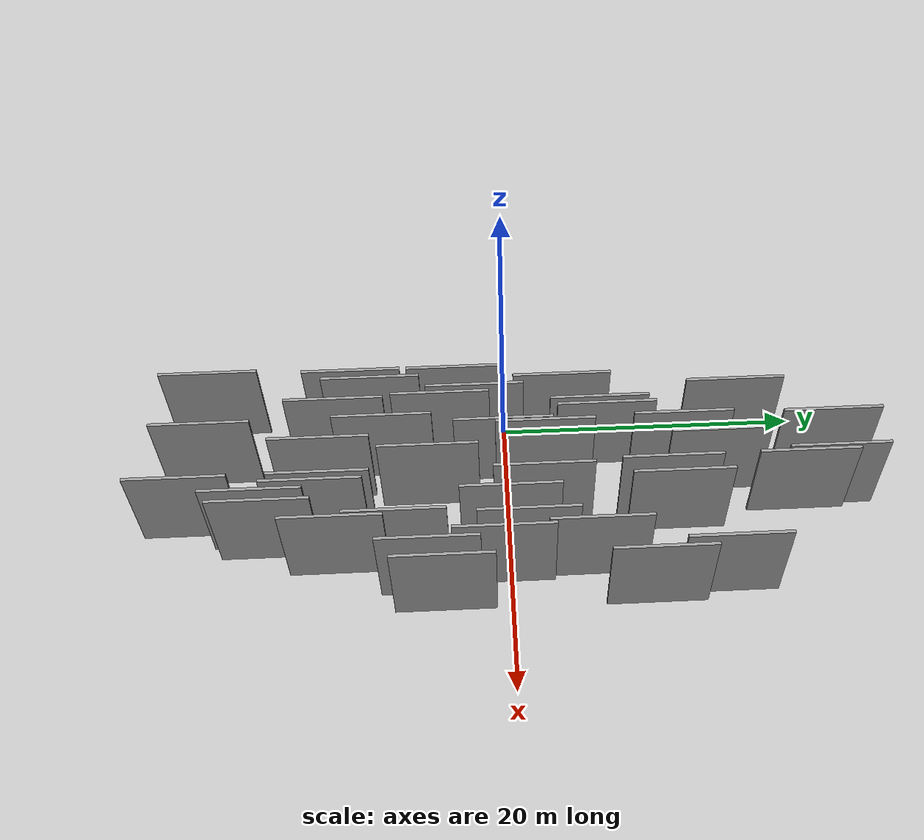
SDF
<sdf version="1.6">
 <world name="default">
  <scene>
   <sky><clouds><speed>12</speed></clouds></sky>
   <ambient>0.4 0.4 0.4 1</ambient>
   <background>0.7 0.7 0.7 1</background>
   <shadows>1</shadows>
  </scene>
  <gravity>0 0 -9.8066</gravity>
  <magnetic_field>6e-06 2.3e-05 -4.2e-05</magnetic_field>
  <physics default="0" name="default_physics" type="ode">
   <ode>
    <solver>
     <type>quick</type>
     <iters>10</iters>
     <sor>1.0</sor>
     <use_dynamic_moi_rescaling>0</use_dynamic_moi_rescaling>
    </solver>
    <constraints>
     <cfm>0</cfm>
     <erp>0.2</erp>
     <contact_max_correcting_vel>100</contact_max_correcting_vel>
     <contact_surface_layer>0.001</contact_surface_layer>
    </constraints>
   </ode>
   <max_step_size>0.004</max_step_size>
   <real_time_factor>1</real_time_factor>
   <real_time_update_rate>250</real_time_update_rate>
  </physics>
  <light name="sun" type="directional">
   <pose>0 0 10 0 0 0</pose>
   <diffuse>0.8 0.8 0.8 1</diffuse>
   <specular>0.2 0.2 0.2 1</specular>
   <attenuation>
    <range>1000</range>
    <constant>0.9</constant>
    <linear>0.01</linear>
    <quadratic>0.001</quadratic>
   </attenuation>
   <direction>-0.5 0.1 -0.9</direction>
  </light>
  <model name="grey_wall_1">
   <static>1</static>
   <pose>7.6778 2.2723 5.0 0.000000 0.000000 1.570796</pose>
   <link name="link">
    <pose>0 0 3.00 0 0 0</pose>
    <collision name="collision"><geometry><box><size>6.00 0.2 6.00</size></box></geometry></collision>
    <visual name="visual">
     <cast_shadows>0</cast_shadows>
     <geometry><box><size>6.00 0.2 6.00</size></box></geometry>
     <material>
      <script>
       <uri>model://grey_wall/materials/scripts</uri>
       <uri>model://grey_wall/materials/textures</uri>
       <name>vrc/grey_wall</name>
      </script>
     </material>
    </visual>
   </link>
  </model>
  <model name="grey_wall_2">
   <static>1</static>
   <pose>14.8432 5.0702 5.0 0.000000 0.000000 1.570796</pose>
   <link name="link">
    <pose>0 0 3.00 0 0 0</pose>
    <collision name="collision"><geometry><box><size>6.00 0.2 6.00</size></box></geometry></collision>
    <visual name="visual">
     <cast_shadows>0</cast_shadows>
     <geometry><box><size>6.00 0.2 6.00</size></box></geometry>
     <material>
      <script>
       <uri>model://grey_wall/materials/scripts</uri>
       <uri>model://grey_wall/materials/textures</uri>
       <name>vrc/grey_wall</name>
      </script>
     </material>
    </visual>
   </link>
  </model>
  <model name="grey_wall_3">
   <static>1</static>
   <pose>11.3981 -11.5746 5.0 0.000000 0.000000 1.570796</pose>
   <link name="link">
    <pose>0 0 3.00 0 0 0</pose>
    <collision name="collision"><geometry><box><size>6.00 0.2 6.00</size></box></geometry></collision>
    <visual name="visual">
     <cast_shadows>0</cast_shadows>
     <geometry><box><size>6.00 0.2 6.00</size></box></geometry>
     <material>
      <script>
       <uri>model://grey_wall/materials/scripts</uri>
       <uri>model://grey_wall/materials/textures</uri>
       <name>vrc/grey_wall</name>
      </script>
     </material>
    </visual>
   </link>
  </model>
  <model name="grey_wall_4">
   <static>1</static>
   <pose>6.5548 6.0789 5.0 0.000000 0.000000 1.570796</pose>
   <link name="link">
    <pose>0 0 3.00 0 0 0</pose>
    <collision name="collision"><geometry><box><size>6.00 0.2 6.00</size></box></geometry></collision>
    <visual name="visual">
     <cast_shadows>0</cast_shadows>
     <geometry><box><size>6.00 0.2 6.00</size></box></geometry>
     <material>
      <script>
       <uri>model://grey_wall/materials/scripts</uri>
       <uri>model://grey_wall/materials/textures</uri>
       <name>vrc/grey_wall</name>
      </script>
     </material>
    </visual>
   </link>
  </model>
  <model name="grey_wall_5">
   <static>1</static>
   <pose>4.7460 -1.8921 5.0 0.000000 0.000000 1.570796</pose>
   <link name="link">
    <pose>0 0 3.00 0 0 0</pose>
    <collision name="collision"><geometry><box><size>6.00 0.2 6.00</size></box></geometry></collision>
    <visual name="visual">
     <cast_shadows>0</cast_shadows>
     <geometry><box><size>6.00 0.2 6.00</size></box></geometry>
     <material>
      <script>
       <uri>model://grey_wall/materials/scripts</uri>
       <uri>model://grey_wall/materials/textures</uri>
       <name>vrc/grey_wall</name>
      </script>
     </material>
    </visual>
   </link>
  </model>
  <model name="grey_wall_6">
   <static>1</static>
   <pose>16.8963 -4.0308 5.0 0.000000 0.000000 1.570796</pose>
   <link name="link">
    <pose>0 0 3.00 0 0 0</pose>
    <collision name="collision"><geometry><box><size>6.00 0.2 6.00</size></box></geometry></collision>
    <visual name="visual">
     <cast_shadows>0</cast_shadows>
     <geometry><box><size>6.00 0.2 6.00</size></box></geometry>
     <material>
      <script>
       <uri>model://grey_wall/materials/scripts</uri>
       <uri>model://grey_wall/materials/textures</uri>
       <name>vrc/grey_wall</name>
      </script>
     </material>
    </visual>
   </link>
  </model>
  <model name="grey_wall_7">
   <static>1</static>
   <pose>3.8668 -8.2815 5.0 0.000000 0.000000 1.570796</pose>
   <link name="link">
    <pose>0 0 3.00 0 0 0</pose>
    <collision name="collision"><geometry><box><size>6.00 0.2 6.00</size></box></geometry></collision>
    <visual name="visual">
     <cast_shadows>0</cast_shadows>
     <geometry><box><size>6.00 0.2 6.00</size></box></geometry>
     <material>
      <script>
       <uri>model://grey_wall/materials/scripts</uri>
       <uri>model://grey_wall/materials/textures</uri>
       <name>vrc/grey_wall</name>
      </script>
     </material>
    </visual>
   </link>
  </model>
  <model name="grey_wall_8">
   <static>1</static>
   <pose>10.7318 9.6051 5.0 0.000000 0.000000 1.570796</pose>
   <link name="link">
    <pose>0 0 3.00 0 0 0</pose>
    <collision name="collision"><geometry><box><size>6.00 0.2 6.00</size></box></geometry></collision>
    <visual name="visual">
     <cast_shadows>0</cast_shadows>
     <geometry><box><size>6.00 0.2 6.00</size></box></geometry>
     <material>
      <script>
       <uri>model://grey_wall/materials/scripts</uri>
       <uri>model://grey_wall/materials/textures</uri>
       <name>vrc/grey_wall</name>
      </script>
     </material>
    </visual>
   </link>
  </model>
  <model name="grey_wall_9">
   <static>1</static>
   <pose>7.4577 -0.2457 5.0 0.000000 0.000000 1.570796</pose>
   <link name="link">
    <pose>0 0 3.00 0 0 0</pose>
    <collision name="collision"><geometry><box><size>6.00 0.2 6.00</size></box></geometry></collision>
    <visual name="visual">
     <cast_shadows>0</cast_shadows>
     <geometry><box><size>6.00 0.2 6.00</size></box></geometry>
     <material>
      <script>
       <uri>model://grey_wall/materials/scripts</uri>
       <uri>model://grey_wall/materials/textures</uri>
       <name>vrc/grey_wall</name>
      </script>
     </material>
    </visual>
   </link>
  </model>
  <model name="grey_wall_10">
   <static>1</static>
   <pose>11.8014 10.1259 5.0 0.000000 0.000000 1.570796</pose>
   <link name="link">
    <pose>0 0 3.00 0 0 0</pose>
    <collision name="collision"><geometry><box><size>6.00 0.2 6.00</size></box></geometry></collision>
    <visual name="visual">
     <cast_shadows>0</cast_shadows>
     <geometry><box><size>6.00 0.2 6.00</size></box></geometry>
     <material>
      <script>
       <uri>model://grey_wall/materials/scripts</uri>
       <uri>model://grey_wall/materials/textures</uri>
       <name>vrc/grey_wall</name>
      </script>
     </material>
    </visual>
   </link>
  </model>
  <model name="grey_wall_11">
   <static>1</static>
   <pose>12.7144 -14.5248 5.0 0.000000 0.000000 1.570796</pose>
   <link name="link">
    <pose>0 0 3.00 0 0 0</pose>
    <collision name="collision"><geometry><box><size>6.00 0.2 6.00</size></box></geometry></collision>
    <visual name="visual">
     <cast_shadows>0</cast_shadows>
     <geometry><box><size>6.00 0.2 6.00</size></box></geometry>
     <material>
      <script>
       <uri>model://grey_wall/materials/scripts</uri>
       <uri>model://grey_wall/materials/textures</uri>
       <name>vrc/grey_wall</name>
      </script>
     </material>
    </visual>
   </link>
  </model>
  <model name="grey_wall_12">
   <static>1</static>
   <pose>15.6975 -4.8449 5.0 0.000000 0.000000 1.570796</pose>
   <link name="link">
    <pose>0 0 3.00 0 0 0</pose>
    <collision name="collision"><geometry><box><size>6.00 0.2 6.00</size></box></geometry></collision>
    <visual name="visual">
     <cast_shadows>0</cast_shadows>
     <geometry><box><size>6.00 0.2 6.00</size></box></geometry>
     <material>
      <script>
       <uri>model://grey_wall/materials/scripts</uri>
       <uri>model://grey_wall/materials/textures</uri>
       <name>vrc/grey_wall</name>
      </script>
     </material>
    </visual>
   </link>
  </model>
  <model name="grey_wall_13">
   <static>1</static>
   <pose>10.4147 19.5446 5.0 0.000000 0.000000 1.570796</pose>
   <link name="link">
    <pose>0 0 3.00 0 0 0</pose>
    <collision name="collision"><geometry><box><size>6.00 0.2 6.00</size></box></geometry></collision>
    <visual name="visual">
     <cast_shadows>0</cast_shadows>
     <geometry><box><size>6.00 0.2 6.00</size></box></geometry>
     <material>
      <script>
       <uri>model://grey_wall/materials/scripts</uri>
       <uri>model://grey_wall/materials/textures</uri>
       <name>vrc/grey_wall</name>
      </script>
     </material>
    </visual>
   </link>
  </model>
  <model name="grey_wall_14">
   <static>1</static>
   <pose>16.4149 12.7058 5.0 0.000000 0.000000 1.570796</pose>
   <link name="link">
    <pose>0 0 3.00 0 0 0</pose>
    <collision name="collision"><geometry><box><size>6.00 0.2 6.00</size></box></geometry></collision>
    <visual name="visual">
     <cast_shadows>0</cast_shadows>
     <geometry><box><size>6.00 0.2 6.00</size></box></geometry>
     <material>
      <script>
       <uri>model://grey_wall/materials/scripts</uri>
       <uri>model://grey_wall/materials/textures</uri>
       <name>vrc/grey_wall</name>
      </script>
     </material>
    </visual>
   </link>
  </model>
  <model name="grey_wall_15">
   <static>1</static>
   <pose>8.9345 12.7191 5.0 0.000000 0.000000 1.570796</pose>
   <link name="link">
    <pose>0 0 3.00 0 0 0</pose>
    <collision name="collision"><geometry><box><size>6.00 0.2 6.00</size></box></geometry></collision>
    <visual name="visual">
     <cast_shadows>0</cast_shadows>
     <geometry><box><size>6.00 0.2 6.00</size></box></geometry>
     <material>
      <script>
       <uri>model://grey_wall/materials/scripts</uri>
       <uri>model://grey_wall/materials/textures</uri>
       <name>vrc/grey_wall</name>
      </script>
     </material>
    </visual>
   </link>
  </model>
  <model name="grey_wall_16">
   <static>1</static>
   <pose>9.2229 -4.7896 5.0 0.000000 0.000000 1.570796</pose>
   <link name="link">
    <pose>0 0 3.00 0 0 0</pose>
    <collision name="collision"><geometry><box><size>6.00 0.2 6.00</size></box></geometry></collision>
    <visual name="visual">
     <cast_shadows>0</cast_shadows>
     <geometry><box><size>6.00 0.2 6.00</size></box></geometry>
     <material>
      <script>
       <uri>model://grey_wall/materials/scripts</uri>
       <uri>model://grey_wall/materials/textures</uri>
       <name>vrc/grey_wall</name>
      </script>
     </material>
    </visual>
   </link>
  </model>
  <model name="grey_wall_17">
   <static>1</static>
   <pose>5.4607 -10.4741 5.0 0.000000 0.000000 1.570796</pose>
   <link name="link">
    <pose>0 0 3.00 0 0 0</pose>
    <collision name="collision"><geometry><box><size>6.00 0.2 6.00</size></box></geometry></collision>
    <visual name="visual">
     <cast_shadows>0</cast_shadows>
     <geometry><box><size>6.00 0.2 6.00</size></box></geometry>
     <material>
      <script>
       <uri>model://grey_wall/materials/scripts</uri>
       <uri>model://grey_wall/materials/textures</uri>
       <name>vrc/grey_wall</name>
      </script>
     </material>
    </visual>
   </link>
  </model>
  <model name="grey_wall_18">
   <static>1</static>
   <pose>6.9703 -18.3741 5.0 0.000000 0.000000 1.570796</pose>
   <link name="link">
    <pose>0 0 3.00 0 0 0</pose>
    <collision name="collision"><geometry><box><size>6.00 0.2 6.00</size></box></geometry></collision>
    <visual name="visual">
     <cast_shadows>0</cast_shadows>
     <geometry><box><size>6.00 0.2 6.00</size></box></geometry>
     <material>
      <script>
       <uri>model://grey_wall/materials/scripts</uri>
       <uri>model://grey_wall/materials/textures</uri>
       <name>vrc/grey_wall</name>
      </script>
     </material>
    </visual>
   </link>
  </model>
  <model name="grey_wall_19">
   <static>1</static>
   <pose>10.7198 17.7000 5.0 0.000000 0.000000 1.570796</pose>
   <link name="link">
    <pose>0 0 3.00 0 0 0</pose>
    <collision name="collision"><geometry><box><size>6.00 0.2 6.00</size></box></geometry></collision>
    <visual name="visual">
     <cast_shadows>0</cast_shadows>
     <geometry><box><size>6.00 0.2 6.00</size></box></geometry>
     <material>
      <script>
       <uri>model://grey_wall/materials/scripts</uri>
       <uri>model://grey_wall/materials/textures</uri>
       <name>vrc/grey_wall</name>
      </script>
     </material>
    </visual>
   </link>
  </model>
  <model name="grey_wall_20">
   <static>1</static>
   <pose>14.0297 -10.3427 5.0 0.000000 0.000000 1.570796</pose>
   <link name="link">
    <pose>0 0 3.00 0 0 0</pose>
    <collision name="collision"><geometry><box><size>6.00 0.2 6.00</size></box></geometry></collision>
    <visual name="visual">
     <cast_shadows>0</cast_shadows>
     <geometry><box><size>6.00 0.2 6.00</size></box></geometry>
     <material>
      <script>
       <uri>model://grey_wall/materials/scripts</uri>
       <uri>model://grey_wall/materials/textures</uri>
       <name>vrc/grey_wall</name>
      </script>
     </material>
    </visual>
   </link>
  </model>
  <model name="grey_wall_21">
   <static>1</static>
   <pose>13.7597 -6.7243 5.0 0.000000 0.000000 1.570796</pose>
   <link name="link">
    <pose>0 0 3.00 0 0 0</pose>
    <collision name="collision"><geometry><box><size>6.00 0.2 6.00</size></box></geometry></collision>
    <visual name="visual">
     <cast_shadows>0</cast_shadows>
     <geometry><box><size>6.00 0.2 6.00</size></box></geometry>
     <material>
      <script>
       <uri>model://grey_wall/materials/scripts</uri>
       <uri>model://grey_wall/materials/textures</uri>
       <name>vrc/grey_wall</name>
      </script>
     </material>
    </visual>
   </link>
  </model>
  <model name="grey_wall_22">
   <static>1</static>
   <pose>7.5126 10.6175 5.0 0.000000 0.000000 1.570796</pose>
   <link name="link">
    <pose>0 0 3.00 0 0 0</pose>
    <collision name="collision"><geometry><box><size>6.00 0.2 6.00</size></box></geometry></collision>
    <visual name="visual">
     <cast_shadows>0</cast_shadows>
     <geometry><box><size>6.00 0.2 6.00</size></box></geometry>
     <material>
      <script>
       <uri>model://grey_wall/materials/scripts</uri>
       <uri>model://grey_wall/materials/textures</uri>
       <name>vrc/grey_wall</name>
      </script>
     </material>
    </visual>
   </link>
  </model>
  <model name="grey_wall_23">
   <static>1</static>
   <pose>8.3783 -11.2549 5.0 0.000000 0.000000 1.570796</pose>
   <link name="link">
    <pose>0 0 3.00 0 0 0</pose>
    <collision name="collision"><geometry><box><size>6.00 0.2 6.00</size></box></geometry></collision>
    <visual name="visual">
     <cast_shadows>0</cast_shadows>
     <geometry><box><size>6.00 0.2 6.00</size></box></geometry>
     <material>
      <script>
       <uri>model://grey_wall/materials/scripts</uri>
       <uri>model://grey_wall/materials/textures</uri>
       <name>vrc/grey_wall</name>
      </script>
     </material>
    </visual>
   </link>
  </model>
  <model name="grey_wall_24">
   <static>1</static>
   <pose>10.8865 -11.1747 5.0 0.000000 0.000000 1.570796</pose>
   <link name="link">
    <pose>0 0 3.00 0 0 0</pose>
    <collision name="collision"><geometry><box><size>6.00 0.2 6.00</size></box></geometry></collision>
    <visual name="visual">
     <cast_shadows>0</cast_shadows>
     <geometry><box><size>6.00 0.2 6.00</size></box></geometry>
     <material>
      <script>
       <uri>model://grey_wall/materials/scripts</uri>
       <uri>model://grey_wall/materials/textures</uri>
       <name>vrc/grey_wall</name>
      </script>
     </material>
    </visual>
   </link>
  </model>
  <model name="grey_wall_25">
   <static>1</static>
   <pose>5.2769 -4.0144 5.0 0.000000 0.000000 1.570796</pose>
   <link name="link">
    <pose>0 0 3.00 0 0 0</pose>
    <collision name="collision"><geometry><box><size>6.00 0.2 6.00</size></box></geometry></collision>
    <visual name="visual">
     <cast_shadows>0</cast_shadows>
     <geometry><box><size>6.00 0.2 6.00</size></box></geometry>
     <material>
      <script>
       <uri>model://grey_wall/materials/scripts</uri>
       <uri>model://grey_wall/materials/textures</uri>
       <name>vrc/grey_wall</name>
      </script>
     </material>
    </visual>
   </link>
  </model>
  <model name="grey_wall_26">
   <static>1</static>
   <pose>3.2855 -3.0692 5.0 0.000000 0.000000 1.570796</pose>
   <link name="link">
    <pose>0 0 3.00 0 0 0</pose>
    <collision name="collision"><geometry><box><size>6.00 0.2 6.00</size></box></geometry></collision>
    <visual name="visual">
     <cast_shadows>0</cast_shadows>
     <geometry><box><size>6.00 0.2 6.00</size></box></geometry>
     <material>
      <script>
       <uri>model://grey_wall/materials/scripts</uri>
       <uri>model://grey_wall/materials/textures</uri>
       <name>vrc/grey_wall</name>
      </script>
     </material>
    </visual>
   </link>
  </model>
  <model name="grey_wall_27">
   <static>1</static>
   <pose>3.0458 -18.2056 5.0 0.000000 0.000000 1.570796</pose>
   <link name="link">
    <pose>0 0 3.00 0 0 0</pose>
    <collision name="collision"><geometry><box><size>6.00 0.2 6.00</size></box></geometry></collision>
    <visual name="visual">
     <cast_shadows>0</cast_shadows>
     <geometry><box><size>6.00 0.2 6.00</size></box></geometry>
     <material>
      <script>
       <uri>model://grey_wall/materials/scripts</uri>
       <uri>model://grey_wall/materials/textures</uri>
       <name>vrc/grey_wall</name>
      </script>
     </material>
    </visual>
   </link>
  </model>
  <model name="grey_wall_28">
   <static>1</static>
   <pose>10.9317 2.0300 5.0 0.000000 0.000000 1.570796</pose>
   <link name="link">
    <pose>0 0 3.00 0 0 0</pose>
    <collision name="collision"><geometry><box><size>6.00 0.2 6.00</size></box></geometry></collision>
    <visual name="visual">
     <cast_shadows>0</cast_shadows>
     <geometry><box><size>6.00 0.2 6.00</size></box></geometry>
     <material>
      <script>
       <uri>model://grey_wall/materials/scripts</uri>
       <uri>model://grey_wall/materials/textures</uri>
       <name>vrc/grey_wall</name>
      </script>
     </material>
    </visual>
   </link>
  </model>
  <model name="grey_wall_29">
   <static>1</static>
   <pose>7.7321 19.5969 5.0 0.000000 0.000000 1.570796</pose>
   <link name="link">
    <pose>0 0 3.00 0 0 0</pose>
    <collision name="collision"><geometry><box><size>6.00 0.2 6.00</size></box></geometry></collision>
    <visual name="visual">
     <cast_shadows>0</cast_shadows>
     <geometry><box><size>6.00 0.2 6.00</size></box></geometry>
     <material>
      <script>
       <uri>model://grey_wall/materials/scripts</uri>
       <uri>model://grey_wall/materials/textures</uri>
       <name>vrc/grey_wall</name>
      </script>
     </material>
    </visual>
   </link>
  </model>
  <model name="grey_wall_30">
   <static>1</static>
   <pose>5.0770 14.0515 5.0 0.000000 0.000000 1.570796</pose>
   <link name="link">
    <pose>0 0 3.00 0 0 0</pose>
    <collision name="collision"><geometry><box><size>6.00 0.2 6.00</size></box></geometry></collision>
    <visual name="visual">
     <cast_shadows>0</cast_shadows>
     <geometry><box><size>6.00 0.2 6.00</size></box></geometry>
     <material>
      <script>
       <uri>model://grey_wall/materials/scripts</uri>
       <uri>model://grey_wall/materials/textures</uri>
       <name>vrc/grey_wall</name>
      </script>
     </material>
    </visual>
   </link>
  </model>
  <model name="grey_wall_31">
   <static>1</static>
   <pose>14.0205 0.9720 5.0 0.000000 0.000000 1.570796</pose>
   <link name="link">
    <pose>0 0 3.00 0 0 0</pose>
    <collision name="collision"><geometry><box><size>6.00 0.2 6.00</size></box></geometry></collision>
    <visual name="visual">
     <cast_shadows>0</cast_shadows>
     <geometry><box><size>6.00 0.2 6.00</size></box></geometry>
     <material>
      <script>
       <uri>model://grey_wall/materials/scripts</uri>
       <uri>model://grey_wall/materials/textures</uri>
       <name>vrc/grey_wall</name>
      </script>
     </material>
    </visual>
   </link>
  </model>
  <model name="grey_wall_32">
   <static>1</static>
   <pose>3.2637 -9.4619 5.0 0.000000 0.000000 1.570796</pose>
   <link name="link">
    <pose>0 0 3.00 0 0 0</pose>
    <collision name="collision"><geometry><box><size>6.00 0.2 6.00</size></box></geometry></collision>
    <visual name="visual">
     <cast_shadows>0</cast_shadows>
     <geometry><box><size>6.00 0.2 6.00</size></box></geometry>
     <material>
      <script>
       <uri>model://grey_wall/materials/scripts</uri>
       <uri>model://grey_wall/materials/textures</uri>
       <name>vrc/grey_wall</name>
      </script>
     </material>
    </visual>
   </link>
  </model>
  <model name="grey_wall_33">
   <static>1</static>
   <pose>16.9803 8.4216 5.0 0.000000 0.000000 1.570796</pose>
   <link name="link">
    <pose>0 0 3.00 0 0 0</pose>
    <collision name="collision"><geometry><box><size>6.00 0.2 6.00</size></box></geometry></collision>
    <visual name="visual">
     <cast_shadows>0</cast_shadows>
     <geometry><box><size>6.00 0.2 6.00</size></box></geometry>
     <material>
      <script>
       <uri>model://grey_wall/materials/scripts</uri>
       <uri>model://grey_wall/materials/textures</uri>
       <name>vrc/grey_wall</name>
      </script>
     </material>
    </visual>
   </link>
  </model>
  <model name="grey_wall_34">
   <static>1</static>
   <pose>6.0533 5.6645 5.0 0.000000 0.000000 1.570796</pose>
   <link name="link">
    <pose>0 0 3.00 0 0 0</pose>
    <collision name="collision"><geometry><box><size>6.00 0.2 6.00</size></box></geometry></collision>
    <visual name="visual">
     <cast_shadows>0</cast_shadows>
     <geometry><box><size>6.00 0.2 6.00</size></box></geometry>
     <material>
      <script>
       <uri>model://grey_wall/materials/scripts</uri>
       <uri>model://grey_wall/materials/textures</uri>
       <name>vrc/grey_wall</name>
      </script>
     </material>
    </visual>
   </link>
  </model>
  <model name="grey_wall_35">
   <static>1</static>
   <pose>4.1713 3.4843 5.0 0.000000 0.000000 1.570796</pose>
   <link name="link">
    <pose>0 0 3.00 0 0 0</pose>
    <collision name="collision"><geometry><box><size>6.00 0.2 6.00</size></box></geometry></collision>
    <visual name="visual">
     <cast_shadows>0</cast_shadows>
     <geometry><box><size>6.00 0.2 6.00</size></box></geometry>
     <material>
      <script>
       <uri>model://grey_wall/materials/scripts</uri>
       <uri>model://grey_wall/materials/textures</uri>
       <name>vrc/grey_wall</name>
      </script>
     </material>
    </visual>
   </link>
  </model>
  <model name="grey_wall_36">
   <static>1</static>
   <pose>11.9497 -14.9938 5.0 0.000000 0.000000 1.570796</pose>
   <link name="link">
    <pose>0 0 3.00 0 0 0</pose>
    <collision name="collision"><geometry><box><size>6.00 0.2 6.00</size></box></geometry></collision>
    <visual name="visual">
     <cast_shadows>0</cast_shadows>
     <geometry><box><size>6.00 0.2 6.00</size></box></geometry>
     <material>
      <script>
       <uri>model://grey_wall/materials/scripts</uri>
       <uri>model://grey_wall/materials/textures</uri>
       <name>vrc/grey_wall</name>
      </script>
     </material>
    </visual>
   </link>
  </model>
  <model name="grey_wall_37">
   <static>1</static>
   <pose>15.1137 -0.4886 5.0 0.000000 0.000000 1.570796</pose>
   <link name="link">
    <pose>0 0 3.00 0 0 0</pose>
    <collision name="collision"><geometry><box><size>6.00 0.2 6.00</size></box></geometry></collision>
    <visual name="visual">
     <cast_shadows>0</cast_shadows>
     <geometry><box><size>6.00 0.2 6.00</size></box></geometry>
     <material>
      <script>
       <uri>model://grey_wall/materials/scripts</uri>
       <uri>model://grey_wall/materials/textures</uri>
       <name>vrc/grey_wall</name>
      </script>
     </material>
    </visual>
   </link>
  </model>
  <model name="grey_wall_38">
   <static>1</static>
   <pose>6.8642 -7.5411 5.0 0.000000 0.000000 1.570796</pose>
   <link name="link">
    <pose>0 0 3.00 0 0 0</pose>
    <collision name="collision"><geometry><box><size>6.00 0.2 6.00</size></box></geometry></collision>
    <visual name="visual">
     <cast_shadows>0</cast_shadows>
     <geometry><box><size>6.00 0.2 6.00</size></box></geometry>
     <material>
      <script>
       <uri>model://grey_wall/materials/scripts</uri>
       <uri>model://grey_wall/materials/textures</uri>
       <name>vrc/grey_wall</name>
      </script>
     </material>
    </visual>
   </link>
  </model>
  <model name="grey_wall_39">
   <static>1</static>
   <pose>12.3319 0.0039 5.0 0.000000 0.000000 1.570796</pose>
   <link name="link">
    <pose>0 0 3.00 0 0 0</pose>
    <collision name="collision"><geometry><box><size>6.00 0.2 6.00</size></box></geometry></collision>
    <visual name="visual">
     <cast_shadows>0</cast_shadows>
     <geometry><box><size>6.00 0.2 6.00</size></box></geometry>
     <material>
      <script>
       <uri>model://grey_wall/materials/scripts</uri>
       <uri>model://grey_wall/materials/textures</uri>
       <name>vrc/grey_wall</name>
      </script>
     </material>
    </visual>
   </link>
  </model>
  <model name="grey_wall_40">
   <static>1</static>
   <pose>10.9229 -19.3911 5.0 0.000000 0.000000 1.570796</pose>
   <link name="link">
    <pose>0 0 3.00 0 0 0</pose>
    <collision name="collision"><geometry><box><size>6.00 0.2 6.00</size></box></geometry></collision>
    <visual name="visual">
     <cast_shadows>0</cast_shadows>
     <geometry><box><size>6.00 0.2 6.00</size></box></geometry>
     <material>
      <script>
       <uri>model://grey_wall/materials/scripts</uri>
       <uri>model://grey_wall/materials/textures</uri>
       <name>vrc/grey_wall</name>
      </script>
     </material>
    </visual>
   </link>
  </model>
 </world>
</sdf>
